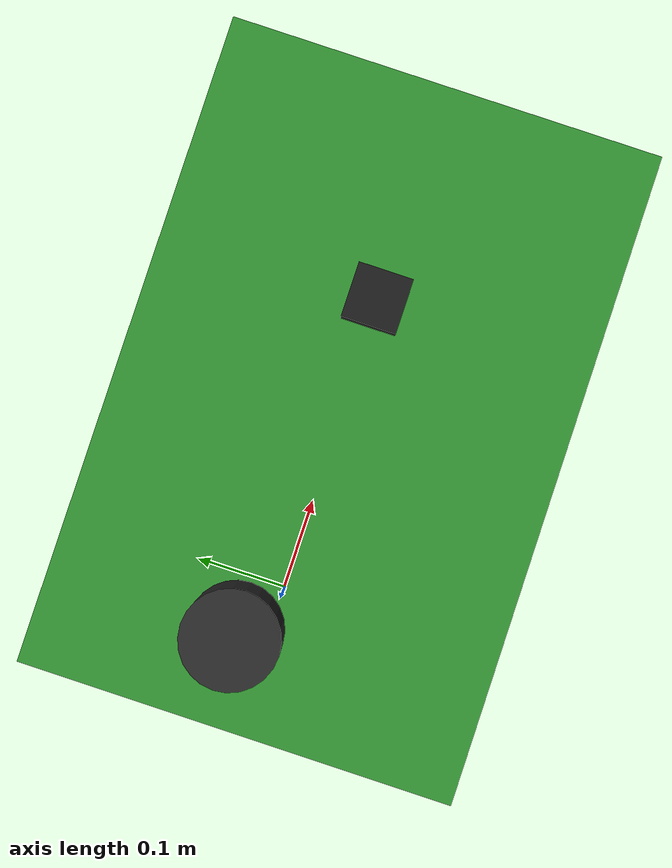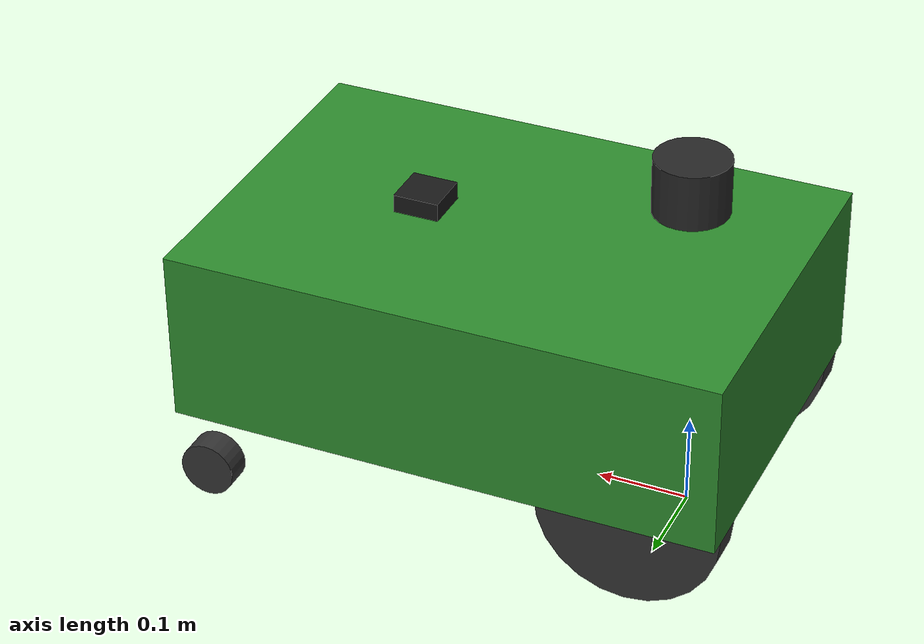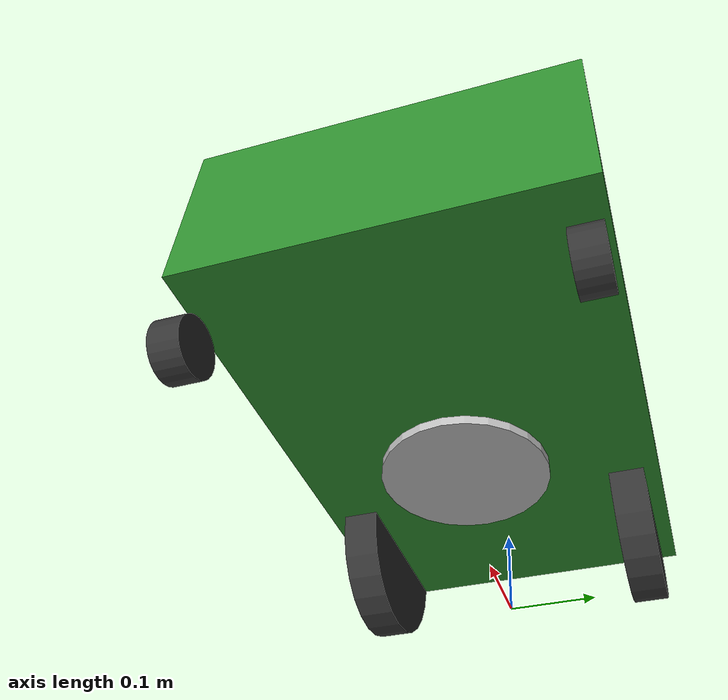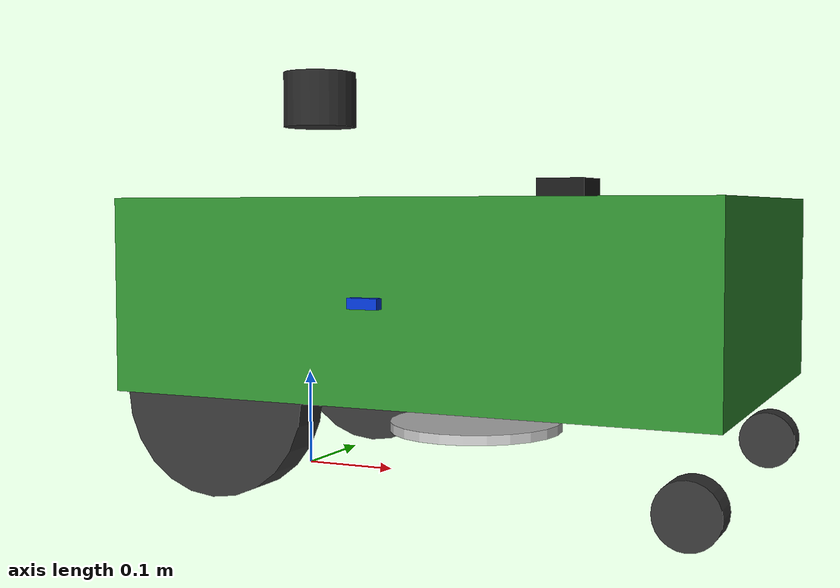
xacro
<?xml version="1.0"?>
<robot name="mowgli" xmlns:xacro="http://www.ros.org/wiki/xacro">

  <!-- LiDAR mount defaults match mowgli_robot.yaml as of 2026-04-26
       (lidar at base centre, ~π rotated mount). Launch overrides these
       at runtime from the operator's calibrated yaml. -->
  <xacro:arg name="lidar_x"   default="0.0"/>
  <xacro:arg name="lidar_y"   default="0.024"/>
  <xacro:arg name="lidar_z"   default="0.30"/>
  <xacro:arg name="lidar_yaw" default="3.1408"/>

  <xacro:arg name="imu_x"     default="0.18"/>
  <!-- -0.195 = mowgli_robot.yaml's imu_y default: the IMU sits to the RIGHT
       of the wheelbase centre. Was 0.0 here, matching the template's old
       (wrong) 0.0 — keep both in lockstep. -->
  <xacro:arg name="imu_y"     default="-0.195"/>
  <xacro:arg name="imu_z"     default="0.095"/>
  <xacro:arg name="imu_roll"  default="0.0"/>
  <xacro:arg name="imu_pitch" default="0.0"/>
  <xacro:arg name="imu_yaw"   default="0.0"/>

  <xacro:arg name="gps_x"     default="0.3"/>
  <xacro:arg name="gps_y"     default="0.0"/>
  <xacro:arg name="gps_z"     default="0.20"/>

  <!-- Chassis shape (all from mowgli_robot.yaml via launch file) -->
  <xacro:arg name="chassis_length"   default="0.60"/>
  <xacro:arg name="chassis_width"    default="0.40"/>
  <xacro:arg name="chassis_height"   default="0.19"/>
  <!-- Preserve the legacy body height unless a preset/operator sets an offset. -->
  <xacro:arg name="chassis_z_offset" default="0.0"/>
  <xacro:arg name="chassis_mass_kg"  default="8.76"/>
  <xacro:arg name="chassis_center_x" default="0.20"/>
  <xacro:arg name="wheel_radius"     default="0.1"/>
  <xacro:arg name="wheel_width"      default="0.04"/>
  <xacro:arg name="wheel_track"      default="0.325"/>
  <xacro:arg name="wheel_x_offset"   default="0.0"/>
  <xacro:arg name="caster_radius"    default="0.03"/>
  <xacro:arg name="caster_track"     default="0.36"/>
  <!-- -1 preserves the historical chassis-derived caster axle position. -->
  <xacro:arg name="caster_x_offset"  default="-1.0"/>
  <xacro:arg name="blade_radius"     default="0.09"/>
  <xacro:arg name="blade_x_offset" default="0.0"/>
  <xacro:arg name="blade_y_offset" default="0.0"/>

  <xacro:property name="base_length"      value="$(arg chassis_length)"/>
  <xacro:property name="base_width"       value="$(arg chassis_width)"/>
  <xacro:property name="base_height"      value="$(arg chassis_height)"/>
  <xacro:property name="chassis_z_offset" value="$(arg chassis_z_offset)"/>
  <xacro:property name="chassis_cx"       value="$(arg chassis_center_x)"/>

  <xacro:property name="wheel_radius"     value="$(arg wheel_radius)"/>
  <xacro:property name="wheel_width"      value="$(arg wheel_width)"/>
  <xacro:property name="wheel_track"      value="$(arg wheel_track)"/>
  <xacro:property name="wheel_mass"       value="0.5"/>
  <xacro:property name="wheel_x_offset"   value="$(arg wheel_x_offset)"/>

  <xacro:property name="caster_radius"    value="$(arg caster_radius)"/>
  <xacro:property name="caster_width"     value="0.03"/>
  <xacro:property name="caster_mass"      value="0.2"/>
  <!-- Fixed caster position. Accept the old -1 sentinel only for existing
       installations; the GUI materializes it when settings are edited. -->
  <xacro:property name="configured_caster_x" value="$(arg caster_x_offset)"/>
  <xacro:property name="caster_x_offset" value="${chassis_cx + base_length/2.0 - caster_radius if float(configured_caster_x) == -1.0 else float(configured_caster_x)}"/>
  <xacro:property name="caster_track"     value="$(arg caster_track)"/>

  <xacro:property name="base_mass"        value="$(arg chassis_mass_kg)"/>

  <xacro:property name="blade_radius"     value="$(arg blade_radius)"/>
  <xacro:property name="blade_x_offset" value="$(arg blade_x_offset)"/>
  <xacro:property name="blade_y_offset" value="$(arg blade_y_offset)"/>
  <xacro:property name="blade_height"     value="0.01"/>
  <xacro:property name="blade_mass"       value="0.3"/>

  <!-- Derived: base_link is wheel_radius above ground -->
  <xacro:property name="base_z_offset"   value="${wheel_radius}"/>

  <!-- ================================================================
       Inertia macros
       ================================================================ -->

  <!-- Solid cylinder: axis along z -->
  <xacro:macro name="cylinder_inertia" params="m r h">
    <inertial>
      <mass value="${m}"/>
      <inertia
        ixx="${(1.0/12.0)*m*(3*r*r + h*h)}"
        ixy="0" ixz="0"
        iyy="${(1.0/12.0)*m*(3*r*r + h*h)}"
        iyz="0"
        izz="${0.5*m*r*r}"/>
    </inertial>
  </xacro:macro>

  <!-- Solid cylinder: axis along y (for wheels) -->
  <xacro:macro name="wheel_inertia" params="m r h">
    <inertial>
      <mass value="${m}"/>
      <!-- Rotate the standard cylinder inertia so the rolling axis is y -->
      <inertia
        ixx="${(1.0/12.0)*m*(3*r*r + h*h)}"
        ixy="0" ixz="0"
        iyy="${0.5*m*r*r}"
        iyz="0"
        izz="${(1.0/12.0)*m*(3*r*r + h*h)}"/>
    </inertial>
  </xacro:macro>

  <!-- Solid box -->
  <xacro:macro name="box_inertia" params="m x y z">
    <inertial>
      <mass value="${m}"/>
      <inertia
        ixx="${(1.0/12.0)*m*(y*y + z*z)}"
        ixy="0" ixz="0"
        iyy="${(1.0/12.0)*m*(x*x + z*z)}"
        iyz="0"
        izz="${(1.0/12.0)*m*(x*x + y*y)}"/>
    </inertial>
  </xacro:macro>

  <!-- ================================================================
       base_footprint  (on the ground plane)
       ================================================================ -->
  <link name="base_footprint"/>

  <joint name="base_footprint_to_base_link" type="fixed">
    <parent link="base_footprint"/>
    <child  link="base_link"/>
    <origin xyz="0 0 ${base_z_offset}" rpy="0 0 0"/>
  </joint>

  <link name="base_link">
    <visual>
      <!-- Chassis centre offset forward from wheel axis -->
      <origin xyz="${chassis_cx} 0 ${base_height/2 + chassis_z_offset}" rpy="0 0 0"/>
      <geometry>
        <box size="${base_length} ${base_width} ${base_height}"/>
      </geometry>
      <material name="mowgli_green">
        <color rgba="0.18 0.55 0.18 1.0"/>
      </material>
    </visual>
    <collision>
      <origin xyz="${chassis_cx} 0 ${base_height/2 + chassis_z_offset}" rpy="0 0 0"/>
      <geometry>
        <box size="${base_length} ${base_width} ${base_height}"/>
      </geometry>
    </collision>
    <xacro:box_inertia m="${base_mass}"
                       x="${base_length}"
                       y="${base_width}"
                       z="${base_height}"/>
  </link>

  <!-- ================================================================
       Drive wheel macro
       ================================================================ -->
  <xacro:macro name="drive_wheel" params="side y_reflect">
    <link name="${side}_wheel_link">
      <visual>
        <origin xyz="0 0 0" rpy="${pi/2} 0 0"/>
        <geometry>
          <cylinder radius="${wheel_radius}" length="${wheel_width}"/>
        </geometry>
        <material name="dark_grey">
          <color rgba="0.2 0.2 0.2 1.0"/>
        </material>
      </visual>
      <collision>
        <origin xyz="0 0 0" rpy="${pi/2} 0 0"/>
        <geometry>
          <cylinder radius="${wheel_radius}" length="${wheel_width}"/>
        </geometry>
      </collision>
      <xacro:wheel_inertia m="${wheel_mass}"
                           r="${wheel_radius}"
                           h="${wheel_width}"/>
    </link>

    <joint name="${side}_wheel_joint" type="continuous">
      <parent link="base_link"/>
      <child  link="${side}_wheel_link"/>
      <!-- Drive wheels at base_link origin -->
      <origin xyz="${wheel_x_offset} ${y_reflect * wheel_track/2} 0" rpy="0 0 0"/>
      <axis xyz="0 1 0"/>
      <dynamics damping="0.1" friction="0.1"/>
    </joint>

    <!-- Gazebo friction for realistic wheel contact -->
    <gazebo reference="${side}_wheel_link">
      <mu1>1.0</mu1>
      <mu2>0.5</mu2>
      <kp>1e6</kp>
      <kd>1.0</kd>
      <minDepth>0.001</minDepth>
    </gazebo>
  </xacro:macro>

  <xacro:drive_wheel side="left"  y_reflect="1"/>
  <xacro:drive_wheel side="right" y_reflect="-1"/>

  <xacro:macro name="front_caster" params="side y_reflect">
    <link name="front_${side}_caster_link">
      <visual>
        <origin xyz="0 0 0" rpy="${pi/2} 0 0"/>
        <geometry>
          <cylinder radius="${caster_radius}" length="${caster_width}"/>
        </geometry>
        <material name="dark_grey"/>
      </visual>
      <collision>
        <origin xyz="0 0 0" rpy="${pi/2} 0 0"/>
        <geometry>
          <cylinder radius="${caster_radius}" length="${caster_width}"/>
        </geometry>
      </collision>
      <inertial>
        <mass value="${caster_mass}"/>
        <inertia
          ixx="${(2.0/5.0)*caster_mass*caster_radius*caster_radius}"
          ixy="0" ixz="0"
          iyy="${(2.0/5.0)*caster_mass*caster_radius*caster_radius}"
          iyz="0"
          izz="${(2.0/5.0)*caster_mass*caster_radius*caster_radius}"/>
      </inertial>
    </link>

    <joint name="front_${side}_caster_joint" type="continuous">
      <parent link="base_link"/>
      <child  link="front_${side}_caster_link"/>
      <!-- Front casters: forward of centre, z at ground level -->
      <origin xyz="${caster_x_offset} ${y_reflect * caster_track/2} ${-wheel_radius + caster_radius}" rpy="0 0 0"/>
      <axis xyz="0 1 0"/>
    </joint>

    <gazebo reference="front_${side}_caster_link">
      <mu1>0.0</mu1>
      <mu2>0.0</mu2>
      <kp>1e6</kp>
      <kd>1.0</kd>
    </gazebo>
  </xacro:macro>

  <xacro:front_caster side="left"  y_reflect="1"/>
  <xacro:front_caster side="right" y_reflect="-1"/>

  <!-- ================================================================
       Blade disc  (centred under base, just below chassis)
       ================================================================ -->
  <link name="blade_link">
    <visual>
      <origin xyz="0 0 ${blade_height/2}" rpy="0 0 0"/>
      <geometry>
        <cylinder radius="${blade_radius}" length="${blade_height}"/>
      </geometry>
      <material name="silver">
        <color rgba="0.75 0.75 0.75 1.0"/>
      </material>
    </visual>
    <collision>
      <origin xyz="0 0 0" rpy="0 0 0"/>
      <geometry>
        <cylinder radius="${blade_radius}" length="${blade_height}"/>
      </geometry>
    </collision>
    <xacro:cylinder_inertia m="${blade_mass}"
                            r="${blade_radius}"
                            h="${blade_height}"/>
  </link>

  <joint name="blade_joint" type="fixed">
    <parent link="base_link"/>
    <child  link="blade_link"/>
    <!-- Offsets from chassis centre: +X forward, +Y left. Zero preserves legacy geometry. -->
    <origin xyz="${chassis_cx + blade_x_offset} ${blade_y_offset} ${-wheel_radius + 0.05}" rpy="0 0 0"/>
  </joint>

  <!-- ================================================================
       IMU link  (centre of base)
       ================================================================ -->
  <link name="imu_link">
    <visual>
      <origin xyz="0 0 0" rpy="0 0 0"/>
      <geometry>
        <box size="0.03 0.03 0.01"/>
      </geometry>
      <material name="blue_chip">
        <color rgba="0.0 0.2 0.8 1.0"/>
      </material>
    </visual>
    <collision>
      <origin xyz="0 0 0" rpy="0 0 0"/>
      <geometry>
        <box size="0.03 0.03 0.01"/>
      </geometry>
    </collision>
    <inertial>
      <mass value="0.01"/>
      <inertia ixx="1e-6" ixy="0" ixz="0"
               iyy="1e-6" iyz="0"
               izz="1e-6"/>
    </inertial>
  </link>

  <joint name="imu_joint" type="fixed">
    <parent link="base_link"/>
    <child  link="imu_link"/>
    <origin xyz="$(arg imu_x) $(arg imu_y) $(arg imu_z)"
            rpy="$(arg imu_roll) $(arg imu_pitch) $(arg imu_yaw)"/>
  </joint>

  <!-- ================================================================
       GPS link  (top centre of base)
       ================================================================ -->
  <link name="gps_link">
    <visual>
      <origin xyz="0 0 0" rpy="0 0 0"/>
      <geometry>
        <box size="0.05 0.05 0.02"/>
      </geometry>
      <material name="black">
        <color rgba="0.1 0.1 0.1 1.0"/>
      </material>
    </visual>
    <collision>
      <origin xyz="0 0 0" rpy="0 0 0"/>
      <geometry>
        <box size="0.05 0.05 0.02"/>
      </geometry>
    </collision>
    <inertial>
      <mass value="0.05"/>
      <inertia ixx="1e-5" ixy="0" ixz="0"
               iyy="1e-5" iyz="0"
               izz="1e-5"/>
    </inertial>
  </link>

  <joint name="gps_joint" type="fixed">
    <parent link="base_link"/>
    <child  link="gps_link"/>
    <origin xyz="$(arg gps_x) $(arg gps_y) $(arg gps_z)" rpy="0 0 0"/>
  </joint>

  <link name="lidar_link">
    <visual>
      <origin xyz="0 0 0" rpy="0 0 0"/>
      <geometry>
        <cylinder radius="0.04" length="0.06"/>
      </geometry>
      <material name="dark_sensor">
        <color rgba="0.15 0.15 0.15 1.0"/>
      </material>
    </visual>
    <collision>
      <origin xyz="0 0 0" rpy="0 0 0"/>
      <geometry>
        <cylinder radius="0.04" length="0.06"/>
      </geometry>
    </collision>
    <inertial>
      <mass value="0.18"/>
      <inertia ixx="1e-4" ixy="0" ixz="0"
               iyy="1e-4" iyz="0"
               izz="1e-4"/>
    </inertial>
  </link>

  <joint name="lidar_joint" type="fixed">
    <parent link="base_link"/>
    <child  link="lidar_link"/>
    <!-- Mounted on top front of chassis — position configurable via xacro args -->
    <origin xyz="$(arg lidar_x) $(arg lidar_y) $(arg lidar_z)" rpy="0 0 $(arg lidar_yaw)"/>
  </joint>

  <!-- ================================================================
       Gazebo simulation
       ================================================================ -->

</robot>
